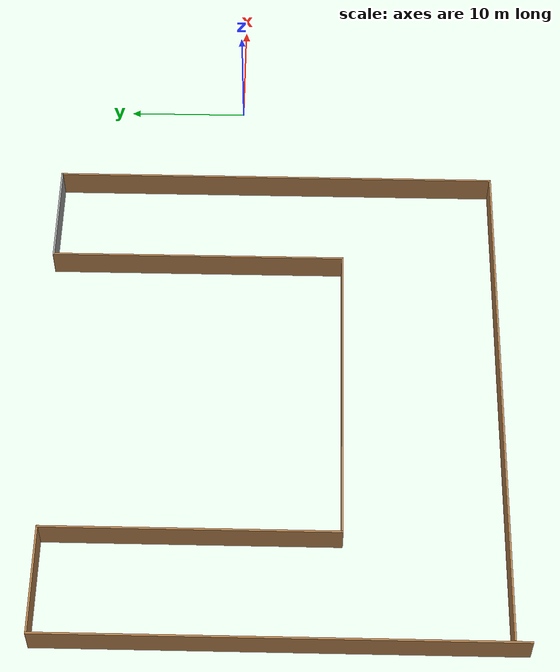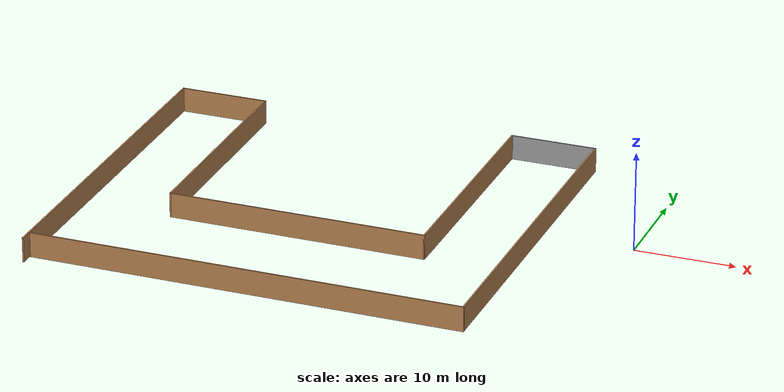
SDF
<?xml version='1.0'?>
<sdf version='1.6'>
  <model name='mybuilding'>
    <pose frame=''>-30.7537 -3.74378 0 0 -0 0</pose>
    <link name='Wall_1'>
      <collision name='Wall_1_Collision'>
        <geometry>
          <box>
            <size>37.5 0.15 2.5</size>
          </box>
        </geometry>
        <pose frame=''>0 0 1.25 0 -0 0</pose>
      </collision>
      <visual name='Wall_1_Visual'>
        <pose frame=''>0 0 1.25 0 -0 0</pose>
        <geometry>
          <box>
            <size>37.5 0.15 2.5</size>
          </box>
        </geometry>
        <material>
          <script>
            <uri>file://media/materials/scripts/gazebo.material</uri>
            <name>Gazebo/Wood</name>
          </script>
          <ambient>1 1 1 1</ambient>
        </material>
        <meta>
          <layer>0</layer>
        </meta>
      </visual>
      <pose frame=''>-21.65 -0.5 0 0 -0 1.5708</pose>
    </link>
    <link name='Wall_2'>
      <collision name='Wall_2_Collision'>
        <geometry>
          <box>
            <size>9 0.15 2.5</size>
          </box>
        </geometry>
        <pose frame=''>0 0 1.25 0 -0 0</pose>
      </collision>
      <visual name='Wall_2_Visual'>
        <pose frame=''>0 0 1.25 0 -0 0</pose>
        <geometry>
          <box>
            <size>9 0.15 2.5</size>
          </box>
        </geometry>
        <material>
          <script>
            <uri>file://media/materials/scripts/gazebo.material</uri>
            <name>Gazebo/Wood</name>
          </script>
          <ambient>1 1 1 1</ambient>
        </material>
        <meta>
          <layer>0</layer>
        </meta>
      </visual>
      <pose frame=''>-17.225 18.175 0 0 -0 0</pose>
    </link>
    <link name='Wall_3'>
      <collision name='Wall_3_Collision'>
        <geometry>
          <box>
            <size>23.5 0.15 2.5</size>
          </box>
        </geometry>
        <pose frame=''>0 0 1.25 0 -0 0</pose>
      </collision>
      <visual name='Wall_3_Visual'>
        <pose frame=''>0 0 1.25 0 -0 0</pose>
        <geometry>
          <box>
            <size>23.5 0.15 2.5</size>
          </box>
        </geometry>
        <material>
          <script>
            <uri>file://media/materials/scripts/gazebo.material</uri>
            <name>Gazebo/Wood</name>
          </script>
          <ambient>1 1 1 1</ambient>
        </material>
        <meta>
          <layer>0</layer>
        </meta>
      </visual>
      <pose frame=''>-12.8 6.5 0 0 -0 -1.5708</pose>
    </link>
    <link name='Wall_4'>
      <collision name='Wall_4_Collision'>
        <geometry>
          <box>
            <size>26 0.15 2.5</size>
          </box>
        </geometry>
        <pose frame=''>0 0 1.25 0 -0 0</pose>
      </collision>
      <visual name='Wall_4_Visual'>
        <pose frame=''>0 0 1.25 0 -0 0</pose>
        <geometry>
          <box>
            <size>26 0.15 2.5</size>
          </box>
        </geometry>
        <material>
          <script>
            <uri>file://media/materials/scripts/gazebo.material</uri>
            <name>Gazebo/Wood</name>
          </script>
          <ambient>1 1 1 1</ambient>
        </material>
        <meta>
          <layer>0</layer>
        </meta>
      </visual>
      <pose frame=''>0.124999 -5.175 0 0 -0 0</pose>
    </link>
    <link name='Wall_5'>
      <collision name='Wall_5_Collision'>
        <geometry>
          <box>
            <size>24.5 0.15 2.5</size>
          </box>
        </geometry>
        <pose frame=''>0 0 1.25 0 -0 0</pose>
      </collision>
      <visual name='Wall_5_Visual'>
        <pose frame=''>0 0 1.25 0 -0 0</pose>
        <geometry>
          <box>
            <size>24.5 0.15 2.5</size>
          </box>
        </geometry>
        <material>
          <script>
            <uri>file://media/materials/scripts/gazebo.material</uri>
            <name>Gazebo/Wood</name>
          </script>
          <ambient>1 1 1 1</ambient>
        </material>
        <meta>
          <layer>0</layer>
        </meta>
      </visual>
      <pose frame=''>13.05 7 0 0 -0 1.5708</pose>
    </link>
    <link name='Wall_6'>
      <collision name='Wall_6_Collision'>
        <geometry>
          <box>
            <size>8.75 0.15 2.5</size>
          </box>
        </geometry>
        <pose frame=''>0 0 1.25 0 -0 0</pose>
      </collision>
      <visual name='Wall_6_Visual'>
        <pose frame=''>0 0 1.25 0 -0 0</pose>
        <geometry>
          <box>
            <size>8.75 0.15 2.5</size>
          </box>
        </geometry>
        <material>
          <script>
            <uri>file://media/materials/scripts/gazebo.material</uri>
            <name>Gazebo/Grey</name>
          </script>
          <ambient>1 1 1 1</ambient>
        </material>
        <meta>
          <layer>0</layer>
        </meta>
      </visual>
      <pose frame=''>17.35 19.175 0 0 -0 0</pose>
    </link>
    <link name='Wall_7'>
      <collision name='Wall_7_Collision'>
        <geometry>
          <box>
            <size>37.25 0.15 2.5</size>
          </box>
        </geometry>
        <pose frame=''>0 0 1.25 0 -0 0</pose>
      </collision>
      <visual name='Wall_7_Visual'>
        <pose frame=''>0 0 1.25 0 -0 0</pose>
        <geometry>
          <box>
            <size>37.25 0.15 2.5</size>
          </box>
        </geometry>
        <material>
          <script>
            <uri>file://media/materials/scripts/gazebo.material</uri>
            <name>Gazebo/Wood</name>
          </script>
          <ambient>1 1 1 1</ambient>
        </material>
        <meta>
          <layer>0</layer>
        </meta>
      </visual>
      <pose frame=''>21.65 0.625 0 0 -0 -1.5708</pose>
    </link>
    <link name='Wall_8'>
      <collision name='Wall_8_Collision'>
        <geometry>
          <box>
            <size>43.25 0.15 2.5</size>
          </box>
        </geometry>
        <pose frame=''>0 0 1.25 0 -0 0</pose>
      </collision>
      <visual name='Wall_8_Visual'>
        <pose frame=''>0 0 1.25 0 -0 0</pose>
        <geometry>
          <box>
            <size>43.25 0.15 2.5</size>
          </box>
        </geometry>
        <material>
          <script>
            <uri>file://media/materials/scripts/gazebo.material</uri>
            <name>Gazebo/Wood</name>
          </script>
          <ambient>1 1 1 1</ambient>
        </material>
        <meta>
          <layer>0</layer>
        </meta>
      </visual>
      <pose frame=''>0.099999 -17.925 0 0 -0 3.14159</pose>
    </link>
    <static>1</static>
  </model>
</sdf>
